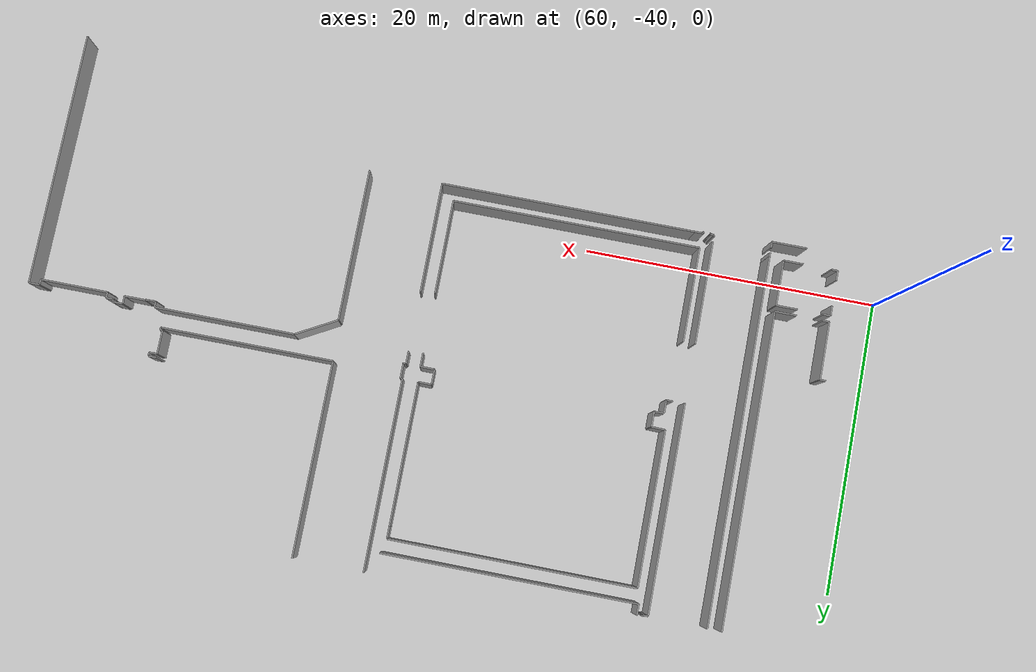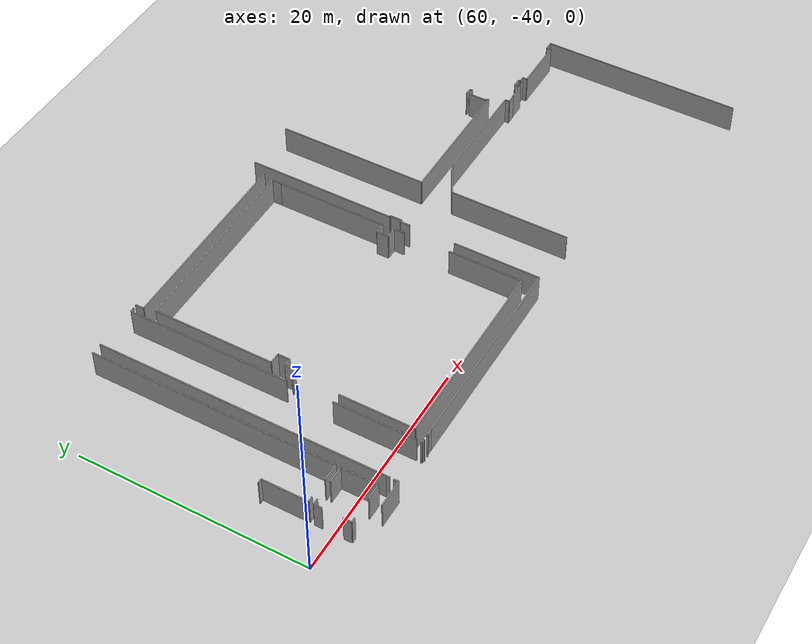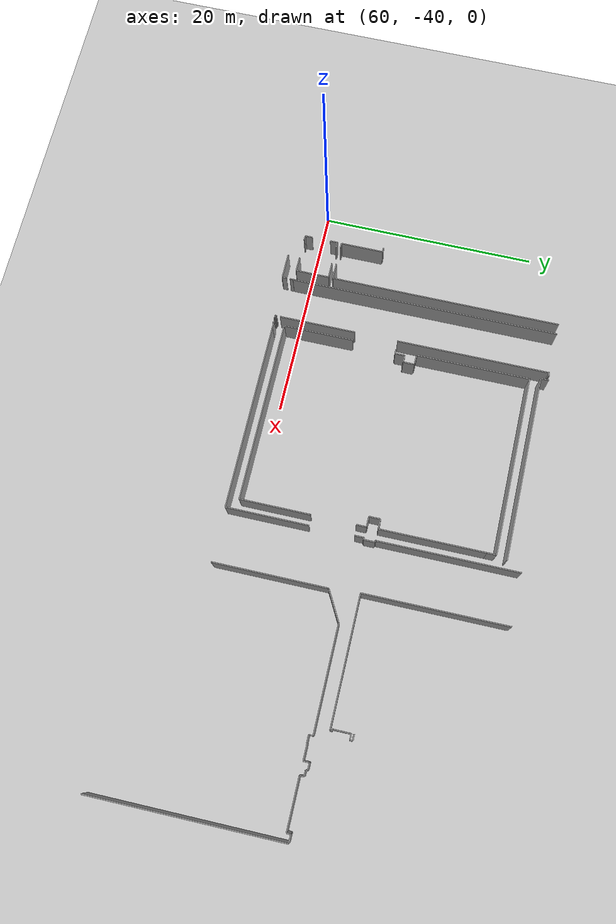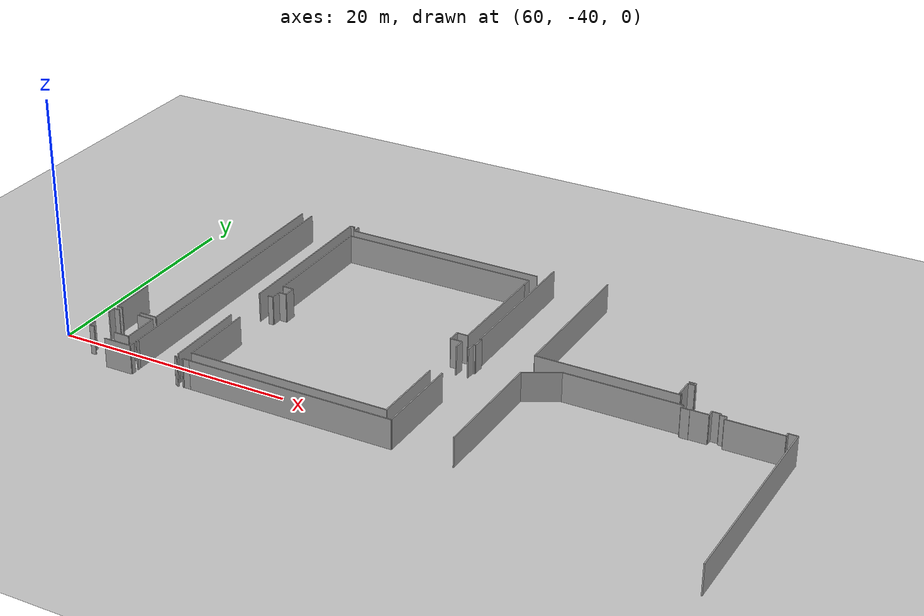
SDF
<sdf version="1.6">
 <world name="default">
  <model name="ground_plane">
   <static>1</static>
   <link name="link">
    <collision name="collision">
     <geometry><plane><normal>0 0 1</normal><size>100 100</size></plane></geometry>
     <surface><friction><ode><mu>100</mu><mu2>50</mu2></ode></friction></surface>
    </collision>
    <visual name="visual">
     <cast_shadows>0</cast_shadows>
     <geometry><plane><normal>0 0 1</normal><size>100 100</size></plane></geometry>
     <material>
      <script><uri>file://media/materials/scripts/gazebo.material</uri><name>Gazebo/Grey</name></script>
     </material>
    </visual>
   </link>
  </model>
  <model name="0510035519_A_40_1_102">
   <static>1</static>
   <link name="Wall_734">
    <collision name="Wall_734_Collision">
     <geometry><box><size>21.4766806456 0.1 2.5</size></box></geometry>
     <pose>10.7383403228 0 1.25 0 0 0</pose>
    </collision>
    <visual name="Wall_734_Visual">
     <pose>10.7383403228 0 1.25 0 0 0</pose>
     <geometry><box><size>21.4766806456 0.1 2.5</size></box></geometry>
     <material>
      <script><uri>file://media/materials/scripts/gazebo.material</uri><name>Gazebo/Grey</name></script>
      <ambient>1 1 1 1</ambient>
     </material>
    </visual>
    <pose>183.664760452 -85.1144999365 0 0 0 -1.57079632679</pose>
   </link>
   <link name="Wall_735">
    <collision name="Wall_735_Collision">
     <geometry><box><size>1.47744313127 0.1 2.5</size></box></geometry>
     <pose>0.738721565637 0 1.25 0 0 0</pose>
    </collision>
    <visual name="Wall_735_Visual">
     <pose>0.738721565637 0 1.25 0 0 0</pose>
     <geometry><box><size>1.47744313127 0.1 2.5</size></box></geometry>
     <material>
      <script><uri>file://media/materials/scripts/gazebo.material</uri><name>Gazebo/Grey</name></script>
      <ambient>1 1 1 1</ambient>
     </material>
    </visual>
    <pose>183.664760452 -106.591180582 0 0 0 3.14159265359</pose>
   </link>
   <link name="Wall_736">
    <collision name="Wall_736_Collision">
     <geometry><box><size>0.453424831618 0.1 2.5</size></box></geometry>
     <pose>0.226712415809 0 1.25 0 0 0</pose>
    </collision>
    <visual name="Wall_736_Visual">
     <pose>0.226712415809 0 1.25 0 0 0</pose>
     <geometry><box><size>0.453424831618 0.1 2.5</size></box></geometry>
     <material>
      <script><uri>file://media/materials/scripts/gazebo.material</uri><name>Gazebo/Grey</name></script>
      <ambient>1 1 1 1</ambient>
     </material>
    </visual>
    <pose>180.429025289 -106.591180582 0 0 0 3.14159265359</pose>
   </link>
   <link name="Wall_737">
    <collision name="Wall_737_Collision">
     <geometry><box><size>3.97407548608 0.1 2.5</size></box></geometry>
     <pose>1.98703774304 0 1.25 0 0 0</pose>
    </collision>
    <visual name="Wall_737_Visual">
     <pose>1.98703774304 0 1.25 0 0 0</pose>
     <geometry><box><size>3.97407548608 0.1 2.5</size></box></geometry>
     <material>
      <script><uri>file://media/materials/scripts/gazebo.material</uri><name>Gazebo/Grey</name></script>
      <ambient>1 1 1 1</ambient>
     </material>
    </visual>
    <pose>179.975600457 -106.591180582 0 0 0 1.57079632679</pose>
   </link>
   <link name="Wall_738">
    <collision name="Wall_738_Collision">
     <geometry><box><size>0.385817765917 0.1 2.5</size></box></geometry>
     <pose>0.192908882958 0 1.25 0 0 0</pose>
    </collision>
    <visual name="Wall_738_Visual">
     <pose>0.192908882958 0 1.25 0 0 0</pose>
     <geometry><box><size>0.385817765917 0.1 2.5</size></box></geometry>
     <material>
      <script><uri>file://media/materials/scripts/gazebo.material</uri><name>Gazebo/Grey</name></script>
      <ambient>1 1 1 1</ambient>
     </material>
    </visual>
    <pose>179.975600457 -102.617105096 0 0 0 3.14159265359</pose>
   </link>
   <link name="Wall_862">
    <collision name="Wall_862_Collision">
     <geometry><box><size>2.38327614691 0.1 2.5</size></box></geometry>
     <pose>1.19163807345 0 1.25 0 0 0</pose>
    </collision>
    <visual name="Wall_862_Visual">
     <pose>1.19163807345 0 1.25 0 0 0</pose>
     <geometry><box><size>2.38327614691 0.1 2.5</size></box></geometry>
     <material>
      <script><uri>file://media/materials/scripts/gazebo.material</uri><name>Gazebo/Grey</name></script>
      <ambient>1 1 1 1</ambient>
     </material>
    </visual>
    <pose>182.232303978 -111.245901639 0 0 0 0.0</pose>
   </link>
   <link name="Wall_863">
    <collision name="Wall_863_Collision">
     <geometry><box><size>0.421146270174 0.1 2.5</size></box></geometry>
     <pose>0.210573135087 0 1.25 0 0 0</pose>
    </collision>
    <visual name="Wall_863_Visual">
     <pose>0.210573135087 0 1.25 0 0 0</pose>
     <geometry><box><size>0.421146270174 0.1 2.5</size></box></geometry>
     <material>
      <script><uri>file://media/materials/scripts/gazebo.material</uri><name>Gazebo/Grey</name></script>
      <ambient>1 1 1 1</ambient>
     </material>
    </visual>
    <pose>184.615580125 -111.245901639 0 0 0 1.57079632679</pose>
   </link>
   <link name="Wall_864">
    <collision name="Wall_864_Collision">
     <geometry><box><size>0.133943321896 0.1 2.5</size></box></geometry>
     <pose>0.066971660948 0 1.25 0 0 0</pose>
    </collision>
    <visual name="Wall_864_Visual">
     <pose>0.066971660948 0 1.25 0 0 0</pose>
     <geometry><box><size>0.133943321896 0.1 2.5</size></box></geometry>
     <material>
      <script><uri>file://media/materials/scripts/gazebo.material</uri><name>Gazebo/Grey</name></script>
      <ambient>1 1 1 1</ambient>
     </material>
    </visual>
    <pose>188.532977507 -110.824755369 0 0 0 -1.57079632679</pose>
   </link>
   <link name="Wall_865">
    <collision name="Wall_865_Collision">
     <geometry><box><size>0.233066463337 0.1 2.5</size></box></geometry>
     <pose>0.116533231669 0 1.25 0 0 0</pose>
    </collision>
    <visual name="Wall_865_Visual">
     <pose>0.116533231669 0 1.25 0 0 0</pose>
     <geometry><box><size>0.233066463337 0.1 2.5</size></box></geometry>
     <material>
      <script><uri>file://media/materials/scripts/gazebo.material</uri><name>Gazebo/Grey</name></script>
      <ambient>1 1 1 1</ambient>
     </material>
    </visual>
    <pose>188.532977507 -110.958698691 0 0 0 0.0</pose>
   </link>
   <link name="Wall_866">
    <collision name="Wall_866_Collision">
     <geometry><box><size>0.0970898462321 0.1 2.5</size></box></geometry>
     <pose>0.048544923116 0 1.25 0 0 0</pose>
    </collision>
    <visual name="Wall_866_Visual">
     <pose>0.048544923116 0 1.25 0 0 0</pose>
     <geometry><box><size>0.0970898462321 0.1 2.5</size></box></geometry>
     <material>
      <script><uri>file://media/materials/scripts/gazebo.material</uri><name>Gazebo/Grey</name></script>
      <ambient>1 1 1 1</ambient>
     </material>
    </visual>
    <pose>188.76604397 -110.958698691 0 0 0 -1.57079632679</pose>
   </link>
   <link name="Wall_905">
    <collision name="Wall_905_Collision">
     <geometry><box><size>0.697420256704 0.1 2.5</size></box></geometry>
     <pose>0.348710128352 0 1.25 0 0 0</pose>
    </collision>
    <visual name="Wall_905_Visual">
     <pose>0.348710128352 0 1.25 0 0 0</pose>
     <geometry><box><size>0.697420256704 0.1 2.5</size></box></geometry>
     <material>
      <script><uri>file://media/materials/scripts/gazebo.material</uri><name>Gazebo/Grey</name></script>
      <ambient>1 1 1 1</ambient>
     </material>
    </visual>
    <pose>179.958063286 -110.127080951 0 0 0 1.57079632679</pose>
   </link>
   <link name="Wall_906">
    <collision name="Wall_906_Collision">
     <geometry><box><size>0.682678866438 0.1 2.5</size></box></geometry>
     <pose>0.341339433219 0 1.25 0 0 0</pose>
    </collision>
    <visual name="Wall_906_Visual">
     <pose>0.341339433219 0 1.25 0 0 0</pose>
     <geometry><box><size>0.682678866438 0.1 2.5</size></box></geometry>
     <material>
      <script><uri>file://media/materials/scripts/gazebo.material</uri><name>Gazebo/Grey</name></script>
      <ambient>1 1 1 1</ambient>
     </material>
    </visual>
    <pose>179.958063286 -107.693226585 0 0 0 1.57079632679</pose>
   </link>
   <link name="Wall_907">
    <collision name="Wall_907_Collision">
     <geometry><box><size>0.509086287965 0.1 2.5</size></box></geometry>
     <pose>0.254543143983 0 1.25 0 0 0</pose>
    </collision>
    <visual name="Wall_907_Visual">
     <pose>0.254543143983 0 1.25 0 0 0</pose>
     <geometry><box><size>0.509086287965 0.1 2.5</size></box></geometry>
     <material>
      <script><uri>file://media/materials/scripts/gazebo.material</uri><name>Gazebo/Grey</name></script>
      <ambient>1 1 1 1</ambient>
     </material>
    </visual>
    <pose>179.958063286 -107.010547719 0 0 0 0.0</pose>
   </link>
   <link name="Wall_908">
    <collision name="Wall_908_Collision">
     <geometry><box><size>1.44236878892 0.1 2.5</size></box></geometry>
     <pose>0.721184394459 0 1.25 0 0 0</pose>
    </collision>
    <visual name="Wall_908_Visual">
     <pose>0.721184394459 0 1.25 0 0 0</pose>
     <geometry><box><size>1.44236878892 0.1 2.5</size></box></geometry>
     <material>
      <script><uri>file://media/materials/scripts/gazebo.material</uri><name>Gazebo/Grey</name></script>
      <ambient>1 1 1 1</ambient>
     </material>
    </visual>
    <pose>182.204346169 -107.010547719 0 0 0 0.0</pose>
   </link>
   <link name="Wall_909">
    <collision name="Wall_909_Collision">
     <geometry><box><size>3.11932901258 0.1 2.5</size></box></geometry>
     <pose>1.55966450629 0 1.25 0 0 0</pose>
    </collision>
    <visual name="Wall_909_Visual">
     <pose>1.55966450629 0 1.25 0 0 0</pose>
     <geometry><box><size>3.11932901258 0.1 2.5</size></box></geometry>
     <material>
      <script><uri>file://media/materials/scripts/gazebo.material</uri><name>Gazebo/Grey</name></script>
      <ambient>1 1 1 1</ambient>
     </material>
    </visual>
    <pose>183.646714957 -107.010547719 0 0 0 -1.57079632679</pose>
   </link>
   <link name="Wall_910">
    <collision name="Wall_910_Collision">
     <geometry><box><size>1.3493455331 0.1 2.5</size></box></geometry>
     <pose>0.674672766552 0 1.25 0 0 0</pose>
    </collision>
    <visual name="Wall_910_Visual">
     <pose>0.674672766552 0 1.25 0 0 0</pose>
     <geometry><box><size>1.3493455331 0.1 2.5</size></box></geometry>
     <material>
      <script><uri>file://media/materials/scripts/gazebo.material</uri><name>Gazebo/Grey</name></script>
      <ambient>1 1 1 1</ambient>
     </material>
    </visual>
    <pose>183.646714957 -110.129876731 0 0 0 3.14159265359</pose>
   </link>
   <link name="Wall_911">
    <collision name="Wall_911_Collision">
     <geometry><box><size>0.421663862588 0.1 2.5</size></box></geometry>
     <pose>0.210831931294 0 1.25 0 0 0</pose>
    </collision>
    <visual name="Wall_911_Visual">
     <pose>0.210831931294 0 1.25 0 0 0</pose>
     <geometry><box><size>0.421663862588 0.1 2.5</size></box></geometry>
     <material>
      <script><uri>file://media/materials/scripts/gazebo.material</uri><name>Gazebo/Grey</name></script>
      <ambient>1 1 1 1</ambient>
     </material>
    </visual>
    <pose>180.37971788 -110.129876731 0 0 0 3.13496225045</pose>
   </link>
   <link name="Wall_935">
    <collision name="Wall_935_Collision">
     <geometry><box><size>17.2311602491 0.1 2.5</size></box></geometry>
     <pose>8.61558012454 0 1.25 0 0 0</pose>
    </collision>
    <visual name="Wall_935_Visual">
     <pose>8.61558012454 0 1.25 0 0 0</pose>
     <geometry><box><size>17.2311602491 0.1 2.5</size></box></geometry>
     <material>
      <script><uri>file://media/materials/scripts/gazebo.material</uri><name>Gazebo/Grey</name></script>
      <ambient>1 1 1 1</ambient>
     </material>
    </visual>
    <pose>206.501207269 -85.8515694497 0 0 0 3.14159265359</pose>
   </link>
   <link name="Wall_936">
    <collision name="Wall_936_Collision">
     <geometry><box><size>0.743169398907 0.1 2.5</size></box></geometry>
     <pose>0.371584699454 0 1.25 0 0 0</pose>
    </collision>
    <visual name="Wall_936_Visual">
     <pose>0.371584699454 0 1.25 0 0 0</pose>
     <geometry><box><size>0.743169398907 0.1 2.5</size></box></geometry>
     <material>
      <script><uri>file://media/materials/scripts/gazebo.material</uri><name>Gazebo/Grey</name></script>
      <ambient>1 1 1 1</ambient>
     </material>
    </visual>
    <pose>189.27004702 -85.8515694497 0 0 0 1.57079632679</pose>
   </link>
   <link name="Wall_952">
    <collision name="Wall_952_Collision">
     <geometry><box><size>25.0842546702 0.1 2.5</size></box></geometry>
     <pose>12.5421273351 0 1.25 0 0 0</pose>
    </collision>
    <visual name="Wall_952_Visual">
     <pose>12.5421273351 0 1.25 0 0 0</pose>
     <geometry><box><size>25.0842546702 0.1 2.5</size></box></geometry>
     <material>
      <script><uri>file://media/materials/scripts/gazebo.material</uri><name>Gazebo/Grey</name></script>
      <ambient>1 1 1 1</ambient>
     </material>
    </visual>
    <pose>184.62295082 -110.206379464 0 0 0 1.57079632679</pose>
   </link>
   <link name="Wall_958">
    <collision name="Wall_958_Collision">
     <geometry><box><size>0.0770110560427 0.1 2.5</size></box></geometry>
     <pose>0.0385055280213 0 1.25 0 0 0</pose>
    </collision>
    <visual name="Wall_958_Visual">
     <pose>0.0385055280213 0 1.25 0 0 0</pose>
     <geometry><box><size>0.0770110560427 0.1 2.5</size></box></geometry>
     <material>
      <script><uri>file://media/materials/scripts/gazebo.material</uri><name>Gazebo/Grey</name></script>
      <ambient>1 1 1 1</ambient>
     </material>
    </visual>
    <pose>188.885754225 -85.1254288982 0 0 0 -1.57079632679</pose>
   </link>
   <link name="Wall_959">
    <collision name="Wall_959_Collision">
     <geometry><box><size>0.341085271318 0.1 2.5</size></box></geometry>
     <pose>0.170542635659 0 1.25 0 0 0</pose>
    </collision>
    <visual name="Wall_959_Visual">
     <pose>0.170542635659 0 1.25 0 0 0</pose>
     <geometry><box><size>0.341085271318 0.1 2.5</size></box></geometry>
     <material>
      <script><uri>file://media/materials/scripts/gazebo.material</uri><name>Gazebo/Grey</name></script>
      <ambient>1 1 1 1</ambient>
     </material>
    </visual>
    <pose>188.885754225 -85.2024399543 0 0 0 3.14159265359</pose>
   </link>
   <link name="Wall_960">
    <collision name="Wall_960_Collision">
     <geometry><box><size>14.1652052357 0.1 2.5</size></box></geometry>
     <pose>7.08260261787 0 1.25 0 0 0</pose>
    </collision>
    <visual name="Wall_960_Visual">
     <pose>7.08260261787 0 1.25 0 0 0</pose>
     <geometry><box><size>14.1652052357 0.1 2.5</size></box></geometry>
     <material>
      <script><uri>file://media/materials/scripts/gazebo.material</uri><name>Gazebo/Grey</name></script>
      <ambient>1 1 1 1</ambient>
     </material>
    </visual>
    <pose>188.544668954 -85.2024399543 0 0 0 -1.57079632679</pose>
   </link>
   <link name="Wall_961">
    <collision name="Wall_961_Collision">
     <geometry><box><size>7.10890837463 0.1 2.5</size></box></geometry>
     <pose>3.55445418732 0 1.25 0 0 0</pose>
    </collision>
    <visual name="Wall_961_Visual">
     <pose>3.55445418732 0 1.25 0 0 0</pose>
     <geometry><box><size>7.10890837463 0.1 2.5</size></box></geometry>
     <material>
      <script><uri>file://media/materials/scripts/gazebo.material</uri><name>Gazebo/Grey</name></script>
      <ambient>1 1 1 1</ambient>
     </material>
    </visual>
    <pose>188.544668954 -103.391028085 0 0 0 -1.57079632679</pose>
   </link>
   <link name="Wall_962">
    <collision name="Wall_962_Collision">
     <geometry><box><size>0.293707583867 0.1 2.5</size></box></geometry>
     <pose>0.146853791934 0 1.25 0 0 0</pose>
    </collision>
    <visual name="Wall_962_Visual">
     <pose>0.146853791934 0 1.25 0 0 0</pose>
     <geometry><box><size>0.293707583867 0.1 2.5</size></box></geometry>
     <material>
      <script><uri>file://media/materials/scripts/gazebo.material</uri><name>Gazebo/Grey</name></script>
      <ambient>1 1 1 1</ambient>
     </material>
    </visual>
    <pose>184.613546829 -110.49993646 0 0 0 1.53877264619</pose>
   </link>
   <link name="Wall_963">
    <collision name="Wall_963_Collision">
     <geometry><box><size>10.5266234591 0.1 2.5</size></box></geometry>
     <pose>5.26331172957 0 1.25 0 0 0</pose>
    </collision>
    <visual name="Wall_963_Visual">
     <pose>5.26331172957 0 1.25 0 0 0</pose>
     <geometry><box><size>10.5266234591 0.1 2.5</size></box></geometry>
     <material>
      <script><uri>file://media/materials/scripts/gazebo.material</uri><name>Gazebo/Grey</name></script>
      <ambient>1 1 1 1</ambient>
     </material>
    </visual>
    <pose>189.52268395 -97.3617994663 0 0 0 1.57079632679</pose>
   </link>
   <link name="Wall_964">
    <collision name="Wall_964_Collision">
     <geometry><box><size>16.6961494472 0.1 2.5</size></box></geometry>
     <pose>8.3480747236 0 1.25 0 0 0</pose>
    </collision>
    <visual name="Wall_964_Visual">
     <pose>8.3480747236 0 1.25 0 0 0</pose>
     <geometry><box><size>16.6961494472 0.1 2.5</size></box></geometry>
     <material>
      <script><uri>file://media/materials/scripts/gazebo.material</uri><name>Gazebo/Grey</name></script>
      <ambient>1 1 1 1</ambient>
     </material>
    </visual>
    <pose>189.52268395 -86.8351760071 0 0 0 0.0</pose>
   </link>
   <link name="Wall_965">
    <collision name="Wall_965_Collision">
     <geometry><box><size>0.83822594993 0.1 2.5</size></box></geometry>
     <pose>0.419112974965 0 1.25 0 0 0</pose>
    </collision>
    <visual name="Wall_965_Visual">
     <pose>0.419112974965 0 1.25 0 0 0</pose>
     <geometry><box><size>0.83822594993 0.1 2.5</size></box></geometry>
     <material>
      <script><uri>file://media/materials/scripts/gazebo.material</uri><name>Gazebo/Grey</name></script>
      <ambient>1 1 1 1</ambient>
     </material>
    </visual>
    <pose>206.218833397 -86.8351760071 0 0 0 -1.57079632679</pose>
   </link>
   <link name="Wall_966">
    <collision name="Wall_966_Collision">
     <geometry><box><size>9.68839750921 0.1 2.5</size></box></geometry>
     <pose>4.84419875461 0 1.25 0 0 0</pose>
    </collision>
    <visual name="Wall_966_Visual">
     <pose>4.84419875461 0 1.25 0 0 0</pose>
     <geometry><box><size>9.68839750921 0.1 2.5</size></box></geometry>
     <material>
      <script><uri>file://media/materials/scripts/gazebo.material</uri><name>Gazebo/Grey</name></script>
      <ambient>1 1 1 1</ambient>
     </material>
    </visual>
    <pose>206.218833397 -87.673401957 0 0 0 -1.57079632679</pose>
   </link>
   <link name="Wall_967">
    <collision name="Wall_967_Collision">
     <geometry><box><size>0.909645444148 0.1 2.5</size></box></geometry>
     <pose>0.454822722074 0 1.25 0 0 0</pose>
    </collision>
    <visual name="Wall_967_Visual">
     <pose>0.454822722074 0 1.25 0 0 0</pose>
     <geometry><box><size>0.909645444148 0.1 2.5</size></box></geometry>
     <material>
      <script><uri>file://media/materials/scripts/gazebo.material</uri><name>Gazebo/Grey</name></script>
      <ambient>1 1 1 1</ambient>
     </material>
    </visual>
    <pose>206.218833397 -97.3617994663 0 0 0 3.14159265359</pose>
   </link>
   <link name="Wall_968">
    <collision name="Wall_968_Collision">
     <geometry><box><size>1.04206379464 0.1 2.5</size></box></geometry>
     <pose>0.521031897319 0 1.25 0 0 0</pose>
    </collision>
    <visual name="Wall_968_Visual">
     <pose>0.521031897319 0 1.25 0 0 0</pose>
     <geometry><box><size>1.04206379464 0.1 2.5</size></box></geometry>
     <material>
      <script><uri>file://media/materials/scripts/gazebo.material</uri><name>Gazebo/Grey</name></script>
      <ambient>1 1 1 1</ambient>
     </material>
    </visual>
    <pose>205.309187953 -97.3617994663 0 0 0 -1.57079632679</pose>
   </link>
   <link name="Wall_969">
    <collision name="Wall_969_Collision">
     <geometry><box><size>0.959969500572 0.1 2.5</size></box></geometry>
     <pose>0.479984750286 0 1.25 0 0 0</pose>
    </collision>
    <visual name="Wall_969_Visual">
     <pose>0.479984750286 0 1.25 0 0 0</pose>
     <geometry><box><size>0.959969500572 0.1 2.5</size></box></geometry>
     <material>
      <script><uri>file://media/materials/scripts/gazebo.material</uri><name>Gazebo/Grey</name></script>
      <ambient>1 1 1 1</ambient>
     </material>
    </visual>
    <pose>205.309187953 -98.4038632609 0 0 0 0.0</pose>
   </link>
   <link name="Wall_970">
    <collision name="Wall_970_Collision">
     <geometry><box><size>0.929978396238 0.1 2.5</size></box></geometry>
     <pose>0.464989198119 0 1.25 0 0 0</pose>
    </collision>
    <visual name="Wall_970_Visual">
     <pose>0.464989198119 0 1.25 0 0 0</pose>
     <geometry><box><size>0.929978396238 0.1 2.5</size></box></geometry>
     <material>
      <script><uri>file://media/materials/scripts/gazebo.material</uri><name>Gazebo/Grey</name></script>
      <ambient>1 1 1 1</ambient>
     </material>
    </visual>
    <pose>206.269157453 -98.4038632609 0 0 0 -1.57079632679</pose>
   </link>
   <link name="Wall_971">
    <collision name="Wall_971_Collision">
     <geometry><box><size>6.48290761215 0.1 2.5</size></box></geometry>
     <pose>3.24145380607 0 1.25 0 0 0</pose>
    </collision>
    <visual name="Wall_971_Visual">
     <pose>3.24145380607 0 1.25 0 0 0</pose>
     <geometry><box><size>6.48290761215 0.1 2.5</size></box></geometry>
     <material>
      <script><uri>file://media/materials/scripts/gazebo.material</uri><name>Gazebo/Grey</name></script>
      <ambient>1 1 1 1</ambient>
     </material>
    </visual>
    <pose>206.269157453 -103.431693989 0 0 0 -1.57079632679</pose>
   </link>
   <link name="Wall_972">
    <collision name="Wall_972_Collision">
     <geometry><box><size>16.9190494345 0.1 2.5</size></box></geometry>
     <pose>8.45952471724 0 1.25 0 0 0</pose>
    </collision>
    <visual name="Wall_972_Visual">
     <pose>8.45952471724 0 1.25 0 0 0</pose>
     <geometry><box><size>16.9190494345 0.1 2.5</size></box></geometry>
     <material>
      <script><uri>file://media/materials/scripts/gazebo.material</uri><name>Gazebo/Grey</name></script>
      <ambient>1 1 1 1</ambient>
     </material>
    </visual>
    <pose>206.269157453 -109.914601601 0 0 0 3.14159265359</pose>
   </link>
   <link name="Wall_973">
    <collision name="Wall_973_Collision">
     <geometry><box><size>6.52077773542 0.1 2.5</size></box></geometry>
     <pose>3.26038886771 0 1.25 0 0 0</pose>
    </collision>
    <visual name="Wall_973_Visual">
     <pose>3.26038886771 0 1.25 0 0 0</pose>
     <geometry><box><size>6.52077773542 0.1 2.5</size></box></geometry>
     <material>
      <script><uri>file://media/materials/scripts/gazebo.material</uri><name>Gazebo/Grey</name></script>
      <ambient>1 1 1 1</ambient>
     </material>
    </visual>
    <pose>189.350108019 -109.914601601 0 0 0 1.57079632679</pose>
   </link>
   <link name="Wall_974">
    <collision name="Wall_974_Collision">
     <geometry><box><size>0.43588766044 0.1 2.5</size></box></geometry>
     <pose>0.21794383022 0 1.25 0 0 0</pose>
    </collision>
    <visual name="Wall_974_Visual">
     <pose>0.21794383022 0 1.25 0 0 0</pose>
     <geometry><box><size>0.43588766044 0.1 2.5</size></box></geometry>
     <material>
      <script><uri>file://media/materials/scripts/gazebo.material</uri><name>Gazebo/Grey</name></script>
      <ambient>1 1 1 1</ambient>
     </material>
    </visual>
    <pose>189.350108019 -99.3277417715 0 0 0 0.0</pose>
   </link>
   <link name="Wall_975">
    <collision name="Wall_975_Collision">
     <geometry><box><size>0.89439573008 0.1 2.5</size></box></geometry>
     <pose>0.44719786504 0 1.25 0 0 0</pose>
    </collision>
    <visual name="Wall_975_Visual">
     <pose>0.44719786504 0 1.25 0 0 0</pose>
     <geometry><box><size>0.89439573008 0.1 2.5</size></box></geometry>
     <material>
      <script><uri>file://media/materials/scripts/gazebo.material</uri><name>Gazebo/Grey</name></script>
      <ambient>1 1 1 1</ambient>
     </material>
    </visual>
    <pose>189.785995679 -99.3277417715 0 0 0 1.57079632679</pose>
   </link>
   <link name="Wall_976">
    <collision name="Wall_976_Collision">
     <geometry><box><size>0.664633371458 0.1 2.5</size></box></geometry>
     <pose>0.332316685729 0 1.25 0 0 0</pose>
    </collision>
    <visual name="Wall_976_Visual">
     <pose>0.332316685729 0 1.25 0 0 0</pose>
     <geometry><box><size>0.664633371458 0.1 2.5</size></box></geometry>
     <material>
      <script><uri>file://media/materials/scripts/gazebo.material</uri><name>Gazebo/Grey</name></script>
      <ambient>1 1 1 1</ambient>
     </material>
    </visual>
    <pose>189.785995679 -98.4333460414 0 0 0 0.0</pose>
   </link>
   <link name="Wall_977">
    <collision name="Wall_977_Collision">
     <geometry><box><size>1.04308044224 0.1 2.5</size></box></geometry>
     <pose>0.521540221121 0 1.25 0 0 0</pose>
    </collision>
    <visual name="Wall_977_Visual">
     <pose>0.521540221121 0 1.25 0 0 0</pose>
     <geometry><box><size>1.04308044224 0.1 2.5</size></box></geometry>
     <material>
      <script><uri>file://media/materials/scripts/gazebo.material</uri><name>Gazebo/Grey</name></script>
      <ambient>1 1 1 1</ambient>
     </material>
    </visual>
    <pose>190.450629051 -98.4333460414 0 0 0 1.57079632679</pose>
   </link>
   <link name="Wall_978">
    <collision name="Wall_978_Collision">
     <geometry><box><size>0.928381619405 0.1 2.5</size></box></geometry>
     <pose>0.464190809702 0 1.25 0 0 0</pose>
    </collision>
    <visual name="Wall_978_Visual">
     <pose>0.464190809702 0 1.25 0 0 0</pose>
     <geometry><box><size>0.928381619405 0.1 2.5</size></box></geometry>
     <material>
      <script><uri>file://media/materials/scripts/gazebo.material</uri><name>Gazebo/Grey</name></script>
      <ambient>1 1 1 1</ambient>
     </material>
    </visual>
    <pose>190.450629051 -97.3902655992 0 0 0 3.11092574389</pose>
   </link>
   <link name="Wall_1068">
    <collision name="Wall_1068_Collision">
     <geometry><box><size>3.09469701706 0.1 2.5</size></box></geometry>
     <pose>1.54734850853 0 1.25 0 0 0</pose>
    </collision>
    <visual name="Wall_1068_Visual">
     <pose>1.54734850853 0 1.25 0 0 0</pose>
     <geometry><box><size>3.09469701706 0.1 2.5</size></box></geometry>
     <material>
      <script><uri>file://media/materials/scripts/gazebo.material</uri><name>Gazebo/Grey</name></script>
      <ambient>1 1 1 1</ambient>
     </material>
    </visual>
    <pose>212.273986529 -100.424958699 0 0 0 0.504354414279</pose>
   </link>
   <link name="Wall_1069">
    <collision name="Wall_1069_Collision">
     <geometry><box><size>9.57097471089 0.1 2.5</size></box></geometry>
     <pose>4.78548735545 0 1.25 0 0 0</pose>
    </collision>
    <visual name="Wall_1069_Visual">
     <pose>4.78548735545 0 1.25 0 0 0</pose>
     <geometry><box><size>9.57097471089 0.1 2.5</size></box></geometry>
     <material>
      <script><uri>file://media/materials/scripts/gazebo.material</uri><name>Gazebo/Grey</name></script>
      <ambient>1 1 1 1</ambient>
     </material>
    </visual>
    <pose>214.983352395 -98.9294700724 0 0 0 0.0</pose>
   </link>
   <link name="Wall_1070">
    <collision name="Wall_1070_Collision">
     <geometry><box><size>0.383784470708 0.1 2.5</size></box></geometry>
     <pose>0.191892235354 0 1.25 0 0 0</pose>
    </collision>
    <visual name="Wall_1070_Visual">
     <pose>0.191892235354 0 1.25 0 0 0</pose>
     <geometry><box><size>0.383784470708 0.1 2.5</size></box></geometry>
     <material>
      <script><uri>file://media/materials/scripts/gazebo.material</uri><name>Gazebo/Grey</name></script>
      <ambient>1 1 1 1</ambient>
     </material>
    </visual>
    <pose>224.554327106 -98.9294700724 0 0 0 -1.57079632679</pose>
   </link>
   <link name="Wall_1071">
    <collision name="Wall_1071_Collision">
     <geometry><box><size>0.688778752065 0.1 2.5</size></box></geometry>
     <pose>0.344389376033 0 1.25 0 0 0</pose>
    </collision>
    <visual name="Wall_1071_Visual">
     <pose>0.344389376033 0 1.25 0 0 0</pose>
     <geometry><box><size>0.688778752065 0.1 2.5</size></box></geometry>
     <material>
      <script><uri>file://media/materials/scripts/gazebo.material</uri><name>Gazebo/Grey</name></script>
      <ambient>1 1 1 1</ambient>
     </material>
    </visual>
    <pose>224.554327106 -99.3132545431 0 0 0 0.0</pose>
   </link>
   <link name="Wall_1072">
    <collision name="Wall_1072_Collision">
     <geometry><box><size>0.0378701232685 0.1 2.5</size></box></geometry>
     <pose>0.0189350616343 0 1.25 0 0 0</pose>
    </collision>
    <visual name="Wall_1072_Visual">
     <pose>0.0189350616343 0 1.25 0 0 0</pose>
     <geometry><box><size>0.0378701232685 0.1 2.5</size></box></geometry>
     <material>
      <script><uri>file://media/materials/scripts/gazebo.material</uri><name>Gazebo/Grey</name></script>
      <ambient>1 1 1 1</ambient>
     </material>
    </visual>
    <pose>225.243105858 -99.3132545431 0 0 0 1.57079632679</pose>
   </link>
   <link name="Wall_1073">
    <collision name="Wall_1073_Collision">
     <geometry><box><size>1.45126445546 0.1 2.5</size></box></geometry>
     <pose>0.725632227729 0 1.25 0 0 0</pose>
    </collision>
    <visual name="Wall_1073_Visual">
     <pose>0.725632227729 0 1.25 0 0 0</pose>
     <geometry><box><size>1.45126445546 0.1 2.5</size></box></geometry>
     <material>
      <script><uri>file://media/materials/scripts/gazebo.material</uri><name>Gazebo/Grey</name></script>
      <ambient>1 1 1 1</ambient>
     </material>
    </visual>
    <pose>225.243105858 -99.2753844199 0 0 0 0.0</pose>
   </link>
   <link name="Wall_1074">
    <collision name="Wall_1074_Collision">
     <geometry><box><size>0.534502478079 0.1 2.5</size></box></geometry>
     <pose>0.267251239039 0 1.25 0 0 0</pose>
    </collision>
    <visual name="Wall_1074_Visual">
     <pose>0.267251239039 0 1.25 0 0 0</pose>
     <geometry><box><size>0.534502478079 0.1 2.5</size></box></geometry>
     <material>
      <script><uri>file://media/materials/scripts/gazebo.material</uri><name>Gazebo/Grey</name></script>
      <ambient>1 1 1 1</ambient>
     </material>
    </visual>
    <pose>226.694370314 -99.2753844199 0 0 0 1.57079632679</pose>
   </link>
   <link name="Wall_1075">
    <collision name="Wall_1075_Collision">
     <geometry><box><size>0.637946371839 0.1 2.5</size></box></geometry>
     <pose>0.318973185919 0 1.25 0 0 0</pose>
    </collision>
    <visual name="Wall_1075_Visual">
     <pose>0.318973185919 0 1.25 0 0 0</pose>
     <geometry><box><size>0.637946371839 0.1 2.5</size></box></geometry>
     <material>
      <script><uri>file://media/materials/scripts/gazebo.material</uri><name>Gazebo/Grey</name></script>
      <ambient>1 1 1 1</ambient>
     </material>
    </visual>
    <pose>226.694370314 -98.7408819418 0 0 0 0.0</pose>
   </link>
   <link name="Wall_1076">
    <collision name="Wall_1076_Collision">
     <geometry><box><size>0.0533739992375 0.1 2.5</size></box></geometry>
     <pose>0.0266869996188 0 1.25 0 0 0</pose>
    </collision>
    <visual name="Wall_1076_Visual">
     <pose>0.0266869996188 0 1.25 0 0 0</pose>
     <geometry><box><size>0.0533739992375 0.1 2.5</size></box></geometry>
     <material>
      <script><uri>file://media/materials/scripts/gazebo.material</uri><name>Gazebo/Grey</name></script>
      <ambient>1 1 1 1</ambient>
     </material>
    </visual>
    <pose>227.332316686 -98.7408819418 0 0 0 0.0</pose>
   </link>
   <link name="Wall_1077">
    <collision name="Wall_1077_Collision">
     <geometry><box><size>0.177659168891 0.1 2.5</size></box></geometry>
     <pose>0.0888295844453 0 1.25 0 0 0</pose>
    </collision>
    <visual name="Wall_1077_Visual">
     <pose>0.0888295844453 0 1.25 0 0 0</pose>
     <geometry><box><size>0.177659168891 0.1 2.5</size></box></geometry>
     <material>
      <script><uri>file://media/materials/scripts/gazebo.material</uri><name>Gazebo/Grey</name></script>
      <ambient>1 1 1 1</ambient>
     </material>
    </visual>
    <pose>227.385690685 -98.7408819418 0 0 0 -1.57079632679</pose>
   </link>
   <link name="Wall_1078">
    <collision name="Wall_1078_Collision">
     <geometry><box><size>0.490532469183 0.1 2.5</size></box></geometry>
     <pose>0.245266234591 0 1.25 0 0 0</pose>
    </collision>
    <visual name="Wall_1078_Visual">
     <pose>0.245266234591 0 1.25 0 0 0</pose>
     <geometry><box><size>0.490532469183 0.1 2.5</size></box></geometry>
     <material>
      <script><uri>file://media/materials/scripts/gazebo.material</uri><name>Gazebo/Grey</name></script>
      <ambient>1 1 1 1</ambient>
     </material>
    </visual>
    <pose>227.385690685 -98.9185411107 0 0 0 0.0</pose>
   </link>
   <link name="Wall_1079">
    <collision name="Wall_1079_Collision">
     <geometry><box><size>0.392425975346 0.1 2.5</size></box></geometry>
     <pose>0.196212987673 0 1.25 0 0 0</pose>
    </collision>
    <visual name="Wall_1079_Visual">
     <pose>0.196212987673 0 1.25 0 0 0</pose>
     <geometry><box><size>0.392425975346 0.1 2.5</size></box></geometry>
     <material>
      <script><uri>file://media/materials/scripts/gazebo.material</uri><name>Gazebo/Grey</name></script>
      <ambient>1 1 1 1</ambient>
     </material>
    </visual>
    <pose>227.876223154 -98.9185411107 0 0 0 -1.57079632679</pose>
   </link>
   <link name="Wall_1080">
    <collision name="Wall_1080_Collision">
     <geometry><box><size>4.59778879146 0.1 2.5</size></box></geometry>
     <pose>2.29889439573 0 1.25 0 0 0</pose>
    </collision>
    <visual name="Wall_1080_Visual">
     <pose>2.29889439573 0 1.25 0 0 0</pose>
     <geometry><box><size>4.59778879146 0.1 2.5</size></box></geometry>
     <material>
      <script><uri>file://media/materials/scripts/gazebo.material</uri><name>Gazebo/Grey</name></script>
      <ambient>1 1 1 1</ambient>
     </material>
    </visual>
    <pose>227.876223154 -99.310967086 0 0 0 0.0</pose>
   </link>
   <link name="Wall_1081">
    <collision name="Wall_1081_Collision">
     <geometry><box><size>0.371838861355 0.1 2.5</size></box></geometry>
     <pose>0.185919430677 0 1.25 0 0 0</pose>
    </collision>
    <visual name="Wall_1081_Visual">
     <pose>0.185919430677 0 1.25 0 0 0</pose>
     <geometry><box><size>0.371838861355 0.1 2.5</size></box></geometry>
     <material>
      <script><uri>file://media/materials/scripts/gazebo.material</uri><name>Gazebo/Grey</name></script>
      <ambient>1 1 1 1</ambient>
     </material>
    </visual>
    <pose>232.474011946 -99.310967086 0 0 0 1.57079632679</pose>
   </link>
   <link name="Wall_1082">
    <collision name="Wall_1082_Collision">
     <geometry><box><size>0.744694370314 0.1 2.5</size></box></geometry>
     <pose>0.372347185157 0 1.25 0 0 0</pose>
    </collision>
    <visual name="Wall_1082_Visual">
     <pose>0.372347185157 0 1.25 0 0 0</pose>
     <geometry><box><size>0.744694370314 0.1 2.5</size></box></geometry>
     <material>
      <script><uri>file://media/materials/scripts/gazebo.material</uri><name>Gazebo/Grey</name></script>
      <ambient>1 1 1 1</ambient>
     </material>
    </visual>
    <pose>232.474011946 -98.9391282247 0 0 0 0.0</pose>
   </link>
   <link name="Wall_1083">
    <collision name="Wall_1083_Collision">
     <geometry><box><size>17.511500826 0.1 2.5</size></box></geometry>
     <pose>8.75575041301 0 1.25 0 0 0</pose>
    </collision>
    <visual name="Wall_1083_Visual">
     <pose>8.75575041301 0 1.25 0 0 0</pose>
     <geometry><box><size>17.511500826 0.1 2.5</size></box></geometry>
     <material>
      <script><uri>file://media/materials/scripts/gazebo.material</uri><name>Gazebo/Grey</name></script>
      <ambient>1 1 1 1</ambient>
     </material>
    </visual>
    <pose>233.218706316 -98.9391282247 0 0 0 -1.57079632679</pose>
   </link>
   <link name="Wall_1090">
    <collision name="Wall_1090_Collision">
     <geometry><box><size>10.4752889989 0.1 2.5</size></box></geometry>
     <pose>5.23764449947 0 1.25 0 0 0</pose>
    </collision>
    <visual name="Wall_1090_Visual">
     <pose>5.23764449947 0 1.25 0 0 0</pose>
     <geometry><box><size>10.4752889989 0.1 2.5</size></box></geometry>
     <material>
      <script><uri>file://media/materials/scripts/gazebo.material</uri><name>Gazebo/Grey</name></script>
      <ambient>1 1 1 1</ambient>
     </material>
    </visual>
    <pose>212.262549244 -110.900241454 0 0 0 1.56970449173</pose>
   </link>
   <link name="Wall_1091">
    <collision name="Wall_1091_Collision">
     <geometry><box><size>13.2405642394 0.1 2.5</size></box></geometry>
     <pose>6.62028211971 0 1.25 0 0 0</pose>
    </collision>
    <visual name="Wall_1091_Visual">
     <pose>6.62028211971 0 1.25 0 0 0</pose>
     <geometry><box><size>13.2405642394 0.1 2.5</size></box></geometry>
     <material>
      <script><uri>file://media/materials/scripts/gazebo.material</uri><name>Gazebo/Grey</name></script>
      <ambient>1 1 1 1</ambient>
     </material>
    </visual>
    <pose>212.067861228 -97.6563731097 0 0 0 1.57079632679</pose>
   </link>
   <link name="Wall_1097">
    <collision name="Wall_1097_Collision">
     <geometry><box><size>0.556614563477 0.1 2.5</size></box></geometry>
     <pose>0.278307281738 0 1.25 0 0 0</pose>
    </collision>
    <visual name="Wall_1097_Visual">
     <pose>0.278307281738 0 1.25 0 0 0</pose>
     <geometry><box><size>0.556614563477 0.1 2.5</size></box></geometry>
     <material>
      <script><uri>file://media/materials/scripts/gazebo.material</uri><name>Gazebo/Grey</name></script>
      <ambient>1 1 1 1</ambient>
     </material>
    </visual>
    <pose>223.672385309 -95.6319735672 0 0 0 0.0</pose>
   </link>
   <link name="Wall_1098">
    <collision name="Wall_1098_Collision">
     <geometry><box><size>0.24933282501 0.1 2.5</size></box></geometry>
     <pose>0.124666412505 0 1.25 0 0 0</pose>
    </collision>
    <visual name="Wall_1098_Visual">
     <pose>0.124666412505 0 1.25 0 0 0</pose>
     <geometry><box><size>0.24933282501 0.1 2.5</size></box></geometry>
     <material>
      <script><uri>file://media/materials/scripts/gazebo.material</uri><name>Gazebo/Grey</name></script>
      <ambient>1 1 1 1</ambient>
     </material>
    </visual>
    <pose>224.228999873 -95.6319735672 0 0 0 -1.57079632679</pose>
   </link>
   <link name="Wall_1099">
    <collision name="Wall_1099_Collision">
     <geometry><box><size>0.541364849409 0.1 2.5</size></box></geometry>
     <pose>0.270682424705 0 1.25 0 0 0</pose>
    </collision>
    <visual name="Wall_1099_Visual">
     <pose>0.270682424705 0 1.25 0 0 0</pose>
     <geometry><box><size>0.541364849409 0.1 2.5</size></box></geometry>
     <material>
      <script><uri>file://media/materials/scripts/gazebo.material</uri><name>Gazebo/Grey</name></script>
      <ambient>1 1 1 1</ambient>
     </material>
    </visual>
    <pose>224.228999873 -95.8813063922 0 0 0 3.14159265359</pose>
   </link>
   <link name="Wall_1100">
    <collision name="Wall_1100_Collision">
     <geometry><box><size>1.61087812937 0.1 2.5</size></box></geometry>
     <pose>0.805439064684 0 1.25 0 0 0</pose>
    </collision>
    <visual name="Wall_1100_Visual">
     <pose>0.805439064684 0 1.25 0 0 0</pose>
     <geometry><box><size>1.61087812937 0.1 2.5</size></box></geometry>
     <material>
      <script><uri>file://media/materials/scripts/gazebo.material</uri><name>Gazebo/Grey</name></script>
      <ambient>1 1 1 1</ambient>
     </material>
    </visual>
    <pose>223.687635024 -95.8813063922 0 0 0 -1.57079632679</pose>
   </link>
   <link name="Wall_1101">
    <collision name="Wall_1101_Collision">
     <geometry><box><size>0.149955521667 0.1 2.5</size></box></geometry>
     <pose>0.0749777608337 0 1.25 0 0 0</pose>
    </collision>
    <visual name="Wall_1101_Visual">
     <pose>0.0749777608337 0 1.25 0 0 0</pose>
     <geometry><box><size>0.149955521667 0.1 2.5</size></box></geometry>
     <material>
      <script><uri>file://media/materials/scripts/gazebo.material</uri><name>Gazebo/Grey</name></script>
      <ambient>1 1 1 1</ambient>
     </material>
    </visual>
    <pose>223.687635024 -97.4921845215 0 0 0 0.0</pose>
   </link>
   <link name="Wall_1102">
    <collision name="Wall_1102_Collision">
     <geometry><box><size>0.172321768967 0.1 2.5</size></box></geometry>
     <pose>0.0861608844834 0 1.25 0 0 0</pose>
    </collision>
    <visual name="Wall_1102_Visual">
     <pose>0.0861608844834 0 1.25 0 0 0</pose>
     <geometry><box><size>0.172321768967 0.1 2.5</size></box></geometry>
     <material>
      <script><uri>file://media/materials/scripts/gazebo.material</uri><name>Gazebo/Grey</name></script>
      <ambient>1 1 1 1</ambient>
     </material>
    </visual>
    <pose>223.837590545 -97.4921845215 0 0 0 -1.57079632679</pose>
   </link>
   <link name="Wall_1103">
    <collision name="Wall_1103_Collision">
     <geometry><box><size>11.7697321277 0.1 2.5</size></box></geometry>
     <pose>5.88486606385 0 1.25 0 0 0</pose>
    </collision>
    <visual name="Wall_1103_Visual">
     <pose>5.88486606385 0 1.25 0 0 0</pose>
     <geometry><box><size>11.7697321277 0.1 2.5</size></box></geometry>
     <material>
      <script><uri>file://media/materials/scripts/gazebo.material</uri><name>Gazebo/Grey</name></script>
      <ambient>1 1 1 1</ambient>
     </material>
    </visual>
    <pose>223.837590545 -97.6645062905 0 0 0 3.14090162839</pose>
   </link>
   <link name="Wall_1164">
    <collision name="Wall_1164_Collision">
     <geometry><box><size>17.3971279705 0.1 2.5</size></box></geometry>
     <pose>8.69856398526 0 1.25 0 0 0</pose>
    </collision>
    <visual name="Wall_1164_Visual">
     <pose>8.69856398526 0 1.25 0 0 0</pose>
     <geometry><box><size>17.3971279705 0.1 2.5</size></box></geometry>
     <material>
      <script><uri>file://media/materials/scripts/gazebo.material</uri><name>Gazebo/Grey</name></script>
      <ambient>1 1 1 1</ambient>
     </material>
    </visual>
    <pose>189.852077774 -110.936586606 0 0 0 0.0</pose>
   </link>
   <link name="Wall_1165">
    <collision name="Wall_1165_Collision">
     <geometry><box><size>7.57758292032 0.1 2.5</size></box></geometry>
     <pose>3.78879146016 0 1.25 0 0 0</pose>
    </collision>
    <visual name="Wall_1165_Visual">
     <pose>3.78879146016 0 1.25 0 0 0</pose>
     <geometry><box><size>7.57758292032 0.1 2.5</size></box></geometry>
     <material>
      <script><uri>file://media/materials/scripts/gazebo.material</uri><name>Gazebo/Grey</name></script>
      <ambient>1 1 1 1</ambient>
     </material>
    </visual>
    <pose>207.249205744 -110.936586606 0 0 0 1.57079632679</pose>
   </link>
   <link name="Wall_1166">
    <collision name="Wall_1166_Collision">
     <geometry><box><size>0.847375778371 0.1 2.5</size></box></geometry>
     <pose>0.423687889185 0 1.25 0 0 0</pose>
    </collision>
    <visual name="Wall_1166_Visual">
     <pose>0.423687889185 0 1.25 0 0 0</pose>
     <geometry><box><size>0.847375778371 0.1 2.5</size></box></geometry>
     <material>
      <script><uri>file://media/materials/scripts/gazebo.material</uri><name>Gazebo/Grey</name></script>
      <ambient>1 1 1 1</ambient>
     </material>
    </visual>
    <pose>207.249205744 -99.2639471343 0 0 0 1.57079632679</pose>
   </link>
   <link name="Wall_1167">
    <collision name="Wall_1167_Collision">
     <geometry><box><size>0.182234083111 0.1 2.5</size></box></geometry>
     <pose>0.0911170415555 0 1.25 0 0 0</pose>
    </collision>
    <visual name="Wall_1167_Visual">
     <pose>0.0911170415555 0 1.25 0 0 0</pose>
     <geometry><box><size>0.182234083111 0.1 2.5</size></box></geometry>
     <material>
      <script><uri>file://media/materials/scripts/gazebo.material</uri><name>Gazebo/Grey</name></script>
      <ambient>1 1 1 1</ambient>
     </material>
    </visual>
    <pose>207.249205744 -98.416571356 0 0 0 0.0</pose>
   </link>
   <link name="Wall_1168">
    <collision name="Wall_1168_Collision">
     <geometry><box><size>1.02401829966 0.1 2.5</size></box></geometry>
     <pose>0.512009149828 0 1.25 0 0 0</pose>
    </collision>
    <visual name="Wall_1168_Visual">
     <pose>0.512009149828 0 1.25 0 0 0</pose>
     <geometry><box><size>1.02401829966 0.1 2.5</size></box></geometry>
     <material>
      <script><uri>file://media/materials/scripts/gazebo.material</uri><name>Gazebo/Grey</name></script>
      <ambient>1 1 1 1</ambient>
     </material>
    </visual>
    <pose>207.431439827 -98.416571356 0 0 0 1.57079632679</pose>
   </link>
   <link name="Wall_1169">
    <collision name="Wall_1169_Collision">
     <geometry><box><size>0.138264074215 0.1 2.5</size></box></geometry>
     <pose>0.0691320371077 0 1.25 0 0 0</pose>
    </collision>
    <visual name="Wall_1169_Visual">
     <pose>0.0691320371077 0 1.25 0 0 0</pose>
     <geometry><box><size>0.138264074215 0.1 2.5</size></box></geometry>
     <material>
      <script><uri>file://media/materials/scripts/gazebo.material</uri><name>Gazebo/Grey</name></script>
      <ambient>1 1 1 1</ambient>
     </material>
    </visual>
    <pose>207.431439827 -97.3925530563 0 0 0 3.14159265359</pose>
   </link>
   <link name="Wall_1170">
    <collision name="Wall_1170_Collision">
     <geometry><box><size>12.9851315288 0.1 2.5</size></box></geometry>
     <pose>6.49256576439 0 1.25 0 0 0</pose>
    </collision>
    <visual name="Wall_1170_Visual">
     <pose>6.49256576439 0 1.25 0 0 0</pose>
     <geometry><box><size>12.9851315288 0.1 2.5</size></box></geometry>
     <material>
      <script><uri>file://media/materials/scripts/gazebo.material</uri><name>Gazebo/Grey</name></script>
      <ambient>1 1 1 1</ambient>
     </material>
    </visual>
    <pose>207.293175753 -97.3925530563 0 0 0 1.57079632679</pose>
   </link>
   <link name="Wall_1195">
    <collision name="Wall_1195_Collision">
     <geometry><box><size>0.118693607828 0.1 2.5</size></box></geometry>
     <pose>0.0593468039141 0 1.25 0 0 0</pose>
    </collision>
    <visual name="Wall_1195_Visual">
     <pose>0.0593468039141 0 1.25 0 0 0</pose>
     <geometry><box><size>0.118693607828 0.1 2.5</size></box></geometry>
     <material>
      <script><uri>file://media/materials/scripts/gazebo.material</uri><name>Gazebo/Grey</name></script>
      <ambient>1 1 1 1</ambient>
     </material>
    </visual>
    <pose>189.251747363 -111.056296861 0 0 0 1.57079632679</pose>
   </link>
   <link name="Wall_1196">
    <collision name="Wall_1196_Collision">
     <geometry><box><size>0.600331271307 0.1 2.5</size></box></geometry>
     <pose>0.300165635654 0 1.25 0 0 0</pose>
    </collision>
    <visual name="Wall_1196_Visual">
     <pose>0.300165635654 0 1.25 0 0 0</pose>
     <geometry><box><size>0.600331271307 0.1 2.5</size></box></geometry>
     <material>
      <script><uri>file://media/materials/scripts/gazebo.material</uri><name>Gazebo/Grey</name></script>
      <ambient>1 1 1 1</ambient>
     </material>
    </visual>
    <pose>189.251747363 -110.937603253 0 0 0 0.00169347848272</pose>
   </link>
   <pose>-116.6 68.721527513 0 0 0 0</pose>
  </model>
 </world>
</sdf>
